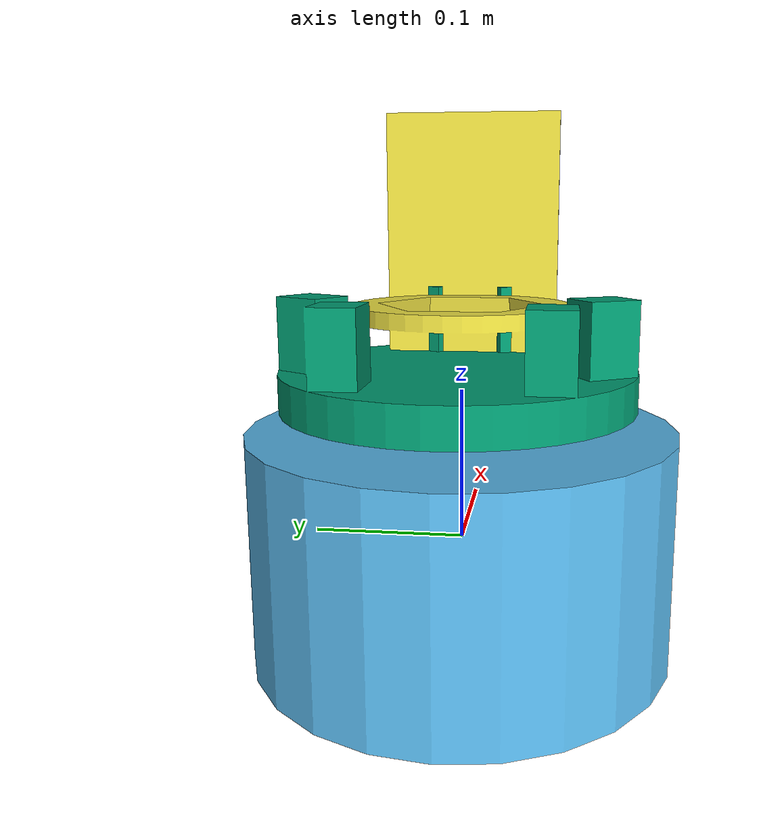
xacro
<?xml version="1.0" ?>
<robot name="ttop" xmlns:xacro="http://ros.org/wiki/xacro">
  <joint name="torso_base_joint" type="fixed">
    <parent link="base_link"/>
    <child link="torso_base"/>
  </joint>
  <joint name="stewart_base_joint" type="revolute">
    <parent link="torso_base"/>
    <child link="stewart_base"/>
    <origin xyz="0     0     0.151" rpy="0 0 0"/>
    <axis xyz="0 0 1"/>
    <limit lower="0.0" upper="0.0" effort="0.0" velocity="0.1"/>
  </joint>
  <joint name="head_joint" type="floating">
    <parent link="stewart_base"/>
    <child link="head"/>
  </joint>
  <link name="base_link"/>
  <link name="torso_base">
    <inertial>
      <mass value="1000.0"/>
      <origin xyz="0 0 0" rpy="0 0 0"/>
      <inertia ixx="1" ixy="0" ixz="0" iyy="1" iyz="0" izz="1"/>
    </inertial>
    <collision name="ttop__collision">
      <origin xyz="0     0     0" rpy="0 0 0"/>
      <geometry>
        <cylinder radius="0.14" length="0.151"/>
      </geometry>
    </collision>
    <visual name="ttop__visual">
      <origin xyz="0     0     0" rpy="0 0 0"/>
      <geometry>
        <cylinder radius="0.14" length="0.151"/>
      </geometry>
    </visual>
  </link>
  <link name="stewart_base">
    <inertial>
      <mass value="1.2"/>
      <origin xyz="0 0 0" rpy="0 0 0"/>
      <inertia ixx="1" ixy="0" ixz="0" iyy="1" iyz="0" izz="1"/>
    </inertial>
    <collision name="ttop__collision">
      <origin xyz="0     0    0" rpy="0 0 0"/>
      <geometry>
        <mesh filename="package://t_top/meshes/rotating_base_mesh.dae" scale="1.0 1.0 1.0"/>
      </geometry>
    </collision>
    <visual name="ttop__visual">
      <origin xyz="0     0    0" rpy="0 0 0"/>
      <geometry>
        <mesh filename="package://t_top/meshes/rotating_base_mesh.dae" scale="1.0 1.0 1.0"/>
      </geometry>
    </visual>
  </link>
  <link name="head">
    <inertial>
      <mass value="0.001"/>
      <origin xyz="0 0 0" rpy="0 0 0"/>
      <inertia ixx="0.001" ixy="0" ixz="0" iyy="0.001" iyz="0" izz="0.001"/>
    </inertial>
    <collision name="ttop__collision">
      <origin xyz="0      0      0" rpy="0       0      0"/>
      <geometry>
        <mesh filename="package://t_top/meshes/stewart_platform_mesh.dae" scale="1.0 1.0 1.0"/>
      </geometry>
    </collision>
    <visual name="ttop__visual">
      <origin xyz="0      0      0" rpy="0       0      0"/>
      <geometry>
        <mesh filename="package://t_top/meshes/stewart_platform_mesh.dae" scale="1.0 1.0 1.0"/>
      </geometry>
    </visual>
  </link>

  <xacro:macro name="sensor_d435" params="name:=camera">
    <xacro:property name="M_PI" value="3.1415926535897931" />

    <xacro:property name="d435_cam_depth_to_left_ir_offset" value="0.0"/>
    <xacro:property name="d435_cam_depth_to_right_ir_offset" value="-0.050"/>
    <xacro:property name="d435_cam_depth_to_color_offset" value="0.015"/>

    <xacro:property name="d435_cam_width" value="0.090"/>
    <xacro:property name="d435_cam_height" value="0.025"/>
    <xacro:property name="d435_cam_depth" value="0.02505"/>
    <xacro:property name="d435_cam_mount_from_center_offset" value="0.0149"/>

    <xacro:property name="d435_cam_depth_px" value="${d435_cam_mount_from_center_offset}"/>
    <xacro:property name="d435_cam_depth_py" value="0.0175"/>
    <xacro:property name="d435_cam_depth_pz" value="${d435_cam_height/2}"/>

    <material name="${name}_aluminum">
    <color rgba="0.5 0.5 0.5 1"/>
    </material>

    <joint name="${name}_link_joint" type="fixed">
      <parent link="head"/>
      <child link="${name}_link" />
    </joint>

    <link name="${name}_link">
      <visual>
      <origin xyz="0 0 0" rpy="0 0 0"/>
        <geometry>
          <box size="${d435_cam_depth} ${d435_cam_width} ${d435_cam_height} "/>
        </geometry>
        <material name="${name}_aluminum"/>
      </visual>
      <collision>
        <origin xyz="0 0 0" rpy="0 0 0"/>
        <geometry>
        <box size="${d435_cam_depth} ${d435_cam_width} ${d435_cam_height} "/>
        </geometry>
      </collision>
      <inertial>
        <mass value="0.564" />
        <origin xyz="0 0 0" />
        <inertia ixx="0.003881243" ixy="0.0" ixz="0.0" iyy="0.000498940" iyz="0.0" izz="0.003879257" />
      </inertial>
    </link>

    <joint name="${name}_depth_joint" type="fixed">
      <parent link="${name}_link"/>
      <child link="${name}_depth_frame" />
    </joint>
    <link name="${name}_depth_frame"/>

    <joint name="${name}_depth_optical_joint" type="fixed">
      <parent link="${name}_depth_frame" />
      <child link="${name}_depth_optical_frame" />
    </joint>
    <link name="${name}_depth_optical_frame"/>

    <joint name="${name}_color_joint" type="fixed">
      <parent link="${name}_depth_frame" />
      <child link="${name}_color_frame" />
    </joint>
    <link name="${name}_color_frame"/>

    <joint name="${name}_color_optical_joint" type="fixed">
      <parent link="${name}_color_frame" />
      <child link="${name}_color_optical_frame" />
    </joint>
    <link name="${name}_color_optical_frame"/>
  </xacro:macro>
</robot>
